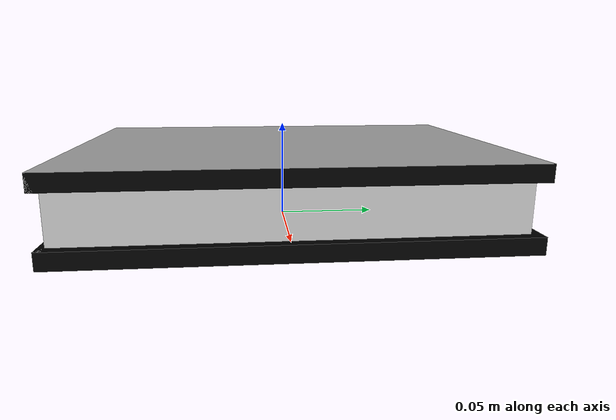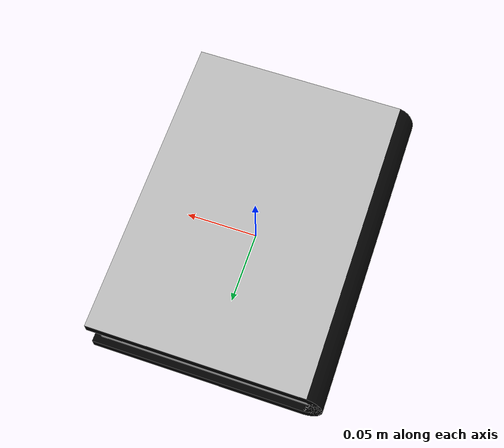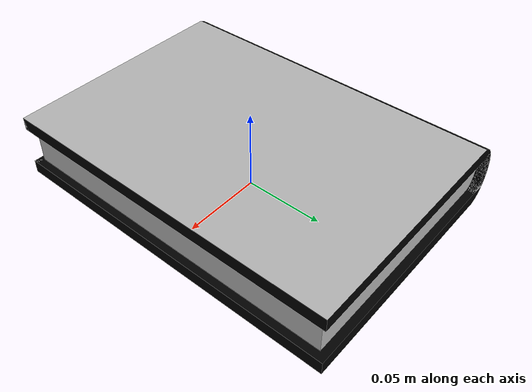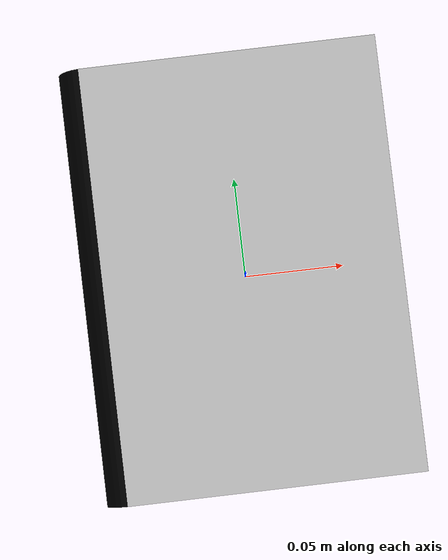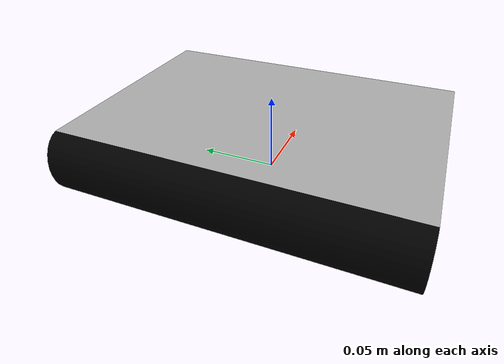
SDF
<?xml version="1.0"?>
<sdf version="1.4">
  <model name="book">
    <static>false</static>
    <link name="link">
      <inertial>
        <mass>0.390</mass>
        <inertia>
          <ixx>0.00058</ixx>
          <ixy>0</ixy>
          <ixz>0</ixz>
          <iyy>0.00058</iyy>
          <iyz>0</iyz>
          <izz>0.00019</izz>
        </inertia>
      </inertial>
      <collision name = "collision">
<pose>0 0 0.0205 0 0 0</pose>
        <geometry>
	<box>
      	   <size>0.16 0.22 0.041</size>
	</box>
        </geometry>
      </collision>
      <visual name="visual">
        <geometry>
          <mesh>
            <uri>model://book/meshes/book.dae</uri>
	    <scale>0.5 0.5 0.5</scale>
          </mesh>
        </geometry>
      </visual>
    </link>
  </model>
</sdf>
